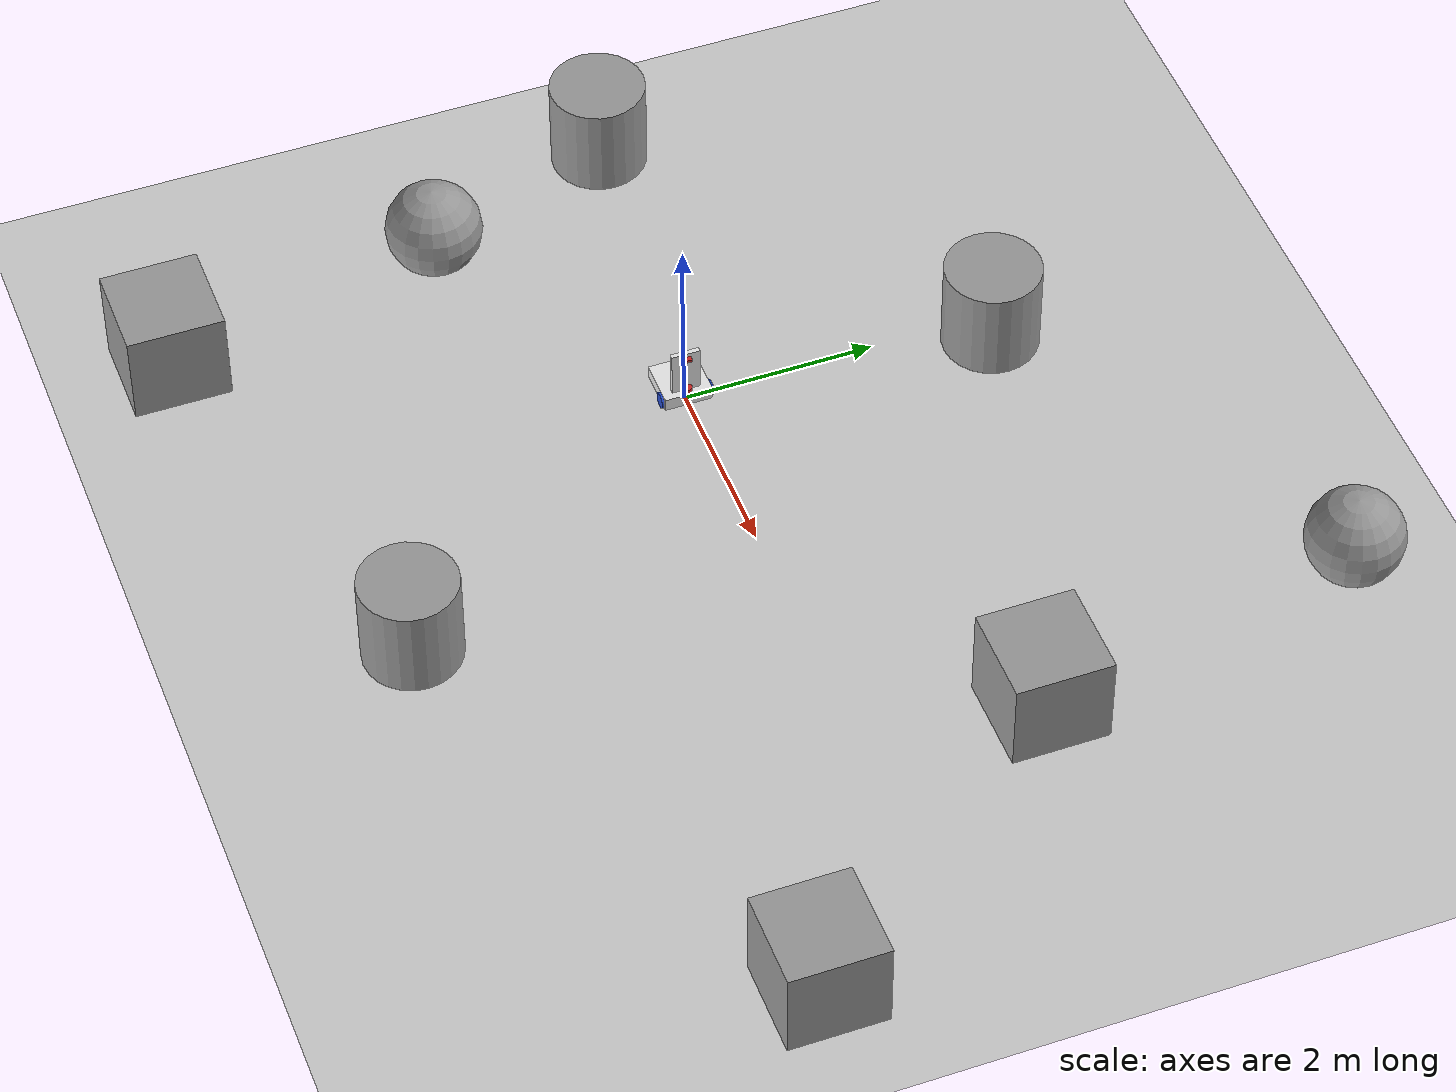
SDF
<sdf version="1.7">
 <world name="default">
  <light name="sun" type="directional">
   <pose>0 0 10 0 -0 0</pose>
   <diffuse>0.8 0.8 0.8 1</diffuse>
   <specular>0.2 0.2 0.2 1</specular>
   <attenuation>
    <range>1000</range>
    <constant>0.9</constant>
    <linear>0.01</linear>
    <quadratic>0.001</quadratic>
   </attenuation>
   <direction>-0.5 0.1 -0.9</direction>
   <spot><inner_angle>0</inner_angle><outer_angle>0</outer_angle><falloff>0</falloff></spot>
  </light>
  <model name="ground_plane">
   <static>1</static>
   <link name="link">
    <collision name="collision">
     <geometry><plane><normal>0 0 1</normal><size>100 100</size></plane></geometry>
     <surface><friction><ode><mu>100</mu><mu2>50</mu2></ode></friction></surface>
    </collision>
    <visual name="visual">
     <cast_shadows>0</cast_shadows>
     <geometry><plane><normal>0 0 1</normal><size>100 100</size></plane></geometry>
     <material>
      <script><uri>file://media/materials/scripts/gazebo.material</uri><name>Gazebo/Grey</name></script>
     </material>
    </visual>
   </link>
  </model>
  <gravity>0 0 -9.8</gravity>
  <magnetic_field>6e-06 2.3e-05 -4.2e-05</magnetic_field>
  <atmosphere type="adiabatic"/>
  <physics type="ode">
   <max_step_size>0.001</max_step_size>
   <real_time_factor>1</real_time_factor>
   <real_time_update_rate>1000</real_time_update_rate>
  </physics>
  <scene><ambient>0.4 0.4 0.4 1</ambient><background>0.7 0.7 0.7 1</background><shadows>1</shadows></scene>
  <spherical_coordinates>
   <surface_model>EARTH_WGS84</surface_model>
   <latitude_deg>0</latitude_deg>
   <longitude_deg>0</longitude_deg>
   <elevation>0</elevation>
   <heading_deg>0</heading_deg>
  </spherical_coordinates>
  <model name="my_bot">
   <link name="base_link">
    <inertial>
     <pose>-0.049858 0 -0.020295 0 -0 0</pose>
     <mass>3.51</mass>
     <inertia>
      <ixx>0.120113</ixx>
      <ixy>-4.15938e-18</ixy>
      <ixz>-0.0424734</ixz>
      <iyy>0.460065</iyy>
      <iyz>4.45012e-19</iyz>
      <izz>0.563322</izz>
     </inertia>
    </inertial>
    <collision name="base_link_fixed_joint_lump__chassis_collision">
     <pose>0.35 0 0.019 0 -0 0</pose>
     <geometry><box><size>0.5 0.5 0.138</size></box></geometry>
    </collision>
    <collision name="base_link_fixed_joint_lump__laser_frame_collision_1">
     <pose>0.05 0 0.125 0 -0 0</pose>
     <geometry><cylinder><length>0.04</length><radius>0.05</radius></cylinder></geometry>
    </collision>
    <collision name="base_link_fixed_joint_lump__left_caster_wheel_collision_2">
     <pose>-0.35 0.2 -0.0515 -1.5708 0 0</pose>
     <geometry><sphere><radius>0.03</radius></sphere></geometry>
     <surface><friction><ode><mu>0.001</mu><mu2>0.001</mu2></ode></friction></surface>
    </collision>
    <collision name="base_link_fixed_joint_lump__right_caster_wheel_collision_3">
     <pose>-0.35 -0.2 -0.0515 1.5708 -0 0</pose>
     <geometry><sphere><radius>0.03</radius></sphere></geometry>
     <surface><friction><ode><mu>0.001</mu><mu2>0.001</mu2></ode></friction></surface>
    </collision>
    <collision name="base_link_fixed_joint_lump__chassis_upper_collision_4">
     <pose>0 0 0.3265 0 -0 0</pose>
     <geometry><box><size>0.05 0.3 0.515</size></box></geometry>
    </collision>
    <visual name="base_link_fixed_joint_lump__chassis_visual">
     <pose>-0.15 0 0.019 0 -0 0</pose>
     <geometry><box><size>0.5 0.5 0.138</size></box></geometry>
     <material>
      <script><name>Gazebo/White</name><uri>file://media/materials/scripts/gazebo.material</uri></script>
     </material>
    </visual>
    <visual name="base_link_fixed_joint_lump__laser_frame_visual_1">
     <pose>0.05 0 0.125 0 -0 0</pose>
     <geometry><cylinder><length>0.04</length><radius>0.05</radius></cylinder></geometry>
     <material>
      <script><name>Gazebo/Red</name><uri>file://media/materials/scripts/gazebo.material</uri></script>
     </material>
    </visual>
    <visual name="base_link_fixed_joint_lump__left_caster_wheel_visual_2">
     <pose>-0.35 0.2 -0.0515 -1.5708 0 0</pose>
     <geometry><sphere><radius>0.03</radius></sphere></geometry>
     <material>
      <script><name>Gazebo/Orange</name><uri>file://media/materials/scripts/gazebo.material</uri></script>
     </material>
    </visual>
    <visual name="base_link_fixed_joint_lump__right_caster_wheel_visual_3">
     <pose>-0.35 -0.2 -0.0515 1.5708 -0 0</pose>
     <geometry><sphere><radius>0.03</radius></sphere></geometry>
     <material>
      <script><name>Gazebo/Orange</name><uri>file://media/materials/scripts/gazebo.material</uri></script>
     </material>
    </visual>
    <visual name="base_link_fixed_joint_lump__chassis_upper_visual_4">
     <pose>0 0 0.3265 0 -0 0</pose>
     <geometry><box><size>0.05 0.3 0.515</size></box></geometry>
     <material>
      <script><name>Gazebo/White</name><uri>file://media/materials/scripts/gazebo.material</uri></script>
     </material>
    </visual>
    <visual name="base_link_fixed_joint_lump__camera_link_visual_5">
     <pose>0.05 0 0.5265 0 -0 0</pose>
     <geometry><box><size>0.05 0.1 0.03</size></box></geometry>
     <material>
      <script><name>Gazebo/Red</name><uri>file://media/materials/scripts/gazebo.material</uri></script>
     </material>
    </visual>
    <sensor name="laser" type="ray">
     <visualize>1</visualize>
     <update_rate>10</update_rate>
     <ray>
      <scan>
       <horizontal>
        <samples>360</samples>
        <min_angle>-3.14</min_angle>
        <max_angle>3.14</max_angle>
        <resolution>1</resolution>
       </horizontal>
       <vertical><samples>1</samples><min_angle>0</min_angle><max_angle>0</max_angle></vertical>
      </scan>
      <range><min>0.3</min><max>12</max></range>
     </ray>
     <plugin name="laser_controller" filename="libgazebo_ros_ray_sensor.so">
      <ros><argument>~/out:=scan</argument></ros>
      <output_type>sensor_msgs/LaserScan</output_type>
      <frame_name>laser_frame</frame_name>
     </plugin>
     <pose>0.05 0 0.125 0 -0 0</pose>
    </sensor>
    <sensor name="camera" type="camera">
     <visualize>1</visualize>
     <update_rate>10</update_rate>
     <camera>
      <horizontal_fov>1.089</horizontal_fov>
      <image><format>R8G8B8</format><width>640</width><height>480</height></image>
      <clip><near>0.05</near><far>8</far></clip>
     </camera>
     <plugin name="camera_controller" filename="libgazebo_ros_camera.so">
      <frame_name>camera_link_optical</frame_name>
     </plugin>
     <pose>0.05 0 0.5265 0 -0 0</pose>
    </sensor>
   </link>
   <joint name="left_wheel_joint" type="revolute">
    <pose relative_to="base_link">0 0.25 0 -1.5708 0 0</pose>
    <parent>base_link</parent>
    <child>left_wheel</child>
    <axis>
     <xyz>0 0 1</xyz>
     <limit><lower>-1e+16</lower><upper>1e+16</upper></limit>
     <dynamics><spring_reference>0</spring_reference><spring_stiffness>0</spring_stiffness></dynamics>
    </axis>
   </joint>
   <link name="left_wheel">
    <pose relative_to="left_wheel_joint">0 0 0 0 -0 0</pose>
    <inertial>
     <mass>2</mass>
     <inertia>
      <ixx>0.00373779</ixx>
      <ixy>0</ixy>
      <ixz>0</ixz>
      <iyy>0.00373779</iyy>
      <iyz>0</iyz>
      <izz>0.00664225</izz>
     </inertia>
    </inertial>
    <collision name="left_wheel_collision">
     <geometry><sphere><radius>0.0815</radius></sphere></geometry>
    </collision>
    <visual name="left_wheel_visual">
     <geometry><cylinder><length>0.05</length><radius>0.0815</radius></cylinder></geometry>
     <material>
      <script><name>Gazebo/Blue</name><uri>file://media/materials/scripts/gazebo.material</uri></script>
     </material>
    </visual>
   </link>
   <joint name="right_wheel_joint" type="revolute">
    <pose relative_to="base_link">0 -0.25 0 1.5708 -0 0</pose>
    <parent>base_link</parent>
    <child>right_wheel</child>
    <axis>
     <xyz>0 0 -1</xyz>
     <limit><lower>-1e+16</lower><upper>1e+16</upper></limit>
     <dynamics><spring_reference>0</spring_reference><spring_stiffness>0</spring_stiffness></dynamics>
    </axis>
   </joint>
   <link name="right_wheel">
    <pose relative_to="right_wheel_joint">0 0 0 0 -0 0</pose>
    <inertial>
     <mass>2</mass>
     <inertia>
      <ixx>0.00373779</ixx>
      <ixy>0</ixy>
      <ixz>0</ixz>
      <iyy>0.00373779</iyy>
      <iyz>0</iyz>
      <izz>0.00664225</izz>
     </inertia>
    </inertial>
    <collision name="right_wheel_collision">
     <geometry><sphere><radius>0.0815</radius></sphere></geometry>
    </collision>
    <visual name="right_wheel_visual">
     <geometry><cylinder><length>0.05</length><radius>0.0815</radius></cylinder></geometry>
     <material>
      <script><name>Gazebo/Blue</name><uri>file://media/materials/scripts/gazebo.material</uri></script>
     </material>
    </visual>
   </link>
   <static>0</static>
   <plugin name="gazebo_ros2_control" filename="libgazebo_ros2_control.so">
    <parameters>/home/alfretz/robot_description/install/simulation/share/simulation/config/my_controllers.yaml</parameters>
    <parameters>/home/alfretz/robot_description/install/simulation/share/simulation/config/gazebo_params.yaml</parameters>
   </plugin>
   <pose>0.022453 0.001151 0.081499 5e-06 1e-06 0.00134</pose>
  </model>
  <model name="unit_box">
   <pose>5.00394 1.74283 0.499995 -1e-05 -0 -0</pose>
   <link name="link">
    <inertial>
     <mass>1</mass>
     <inertia>
      <ixx>0.166667</ixx>
      <ixy>0</ixy>
      <ixz>0</ixz>
      <iyy>0.166667</iyy>
      <iyz>0</iyz>
      <izz>0.166667</izz>
     </inertia>
    </inertial>
    <collision name="collision"><geometry><box><size>1 1 1</size></box></geometry></collision>
    <visual name="visual">
     <geometry><box><size>1 1 1</size></box></geometry>
     <material>
      <script><name>Gazebo/Grey</name><uri>file://media/materials/scripts/gazebo.material</uri></script>
     </material>
    </visual>
   </link>
  </model>
  <model name="unit_box_0">
   <pose>7.34835 -1.40441 0.499995 0 1e-05 0</pose>
   <link name="link">
    <inertial>
     <mass>1</mass>
     <inertia>
      <ixx>0.166667</ixx>
      <ixy>0</ixy>
      <ixz>0</ixz>
      <iyy>0.166667</iyy>
      <iyz>0</iyz>
      <izz>0.166667</izz>
     </inertia>
    </inertial>
    <collision name="collision"><geometry><box><size>1 1 1</size></box></geometry></collision>
    <visual name="visual">
     <geometry><box><size>1 1 1</size></box></geometry>
     <material>
      <script><name>Gazebo/Grey</name><uri>file://media/materials/scripts/gazebo.material</uri></script>
     </material>
    </visual>
   </link>
  </model>
  <model name="unit_cylinder">
   <pose>2.21449 -3.56769 0.499992 -3e-06 4e-06 0</pose>
   <link name="link">
    <inertial>
     <mass>1</mass>
     <inertia><ixx>0.145833</ixx><ixy>0</ixy><ixz>0</ixz><iyy>0.145833</iyy><iyz>0</iyz><izz>0.125</izz></inertia>
    </inertial>
    <collision name="collision">
     <geometry><cylinder><radius>0.5</radius><length>1</length></cylinder></geometry>
    </collision>
    <visual name="visual">
     <geometry><cylinder><radius>0.5</radius><length>1</length></cylinder></geometry>
     <material>
      <script><name>Gazebo/Grey</name><uri>file://media/materials/scripts/gazebo.material</uri></script>
     </material>
    </visual>
   </link>
  </model>
  <model name="unit_cylinder_0">
   <pose>0.298035 3.16798 0.499998 3e-06 4e-06 -0</pose>
   <link name="link">
    <inertial>
     <mass>1</mass>
     <inertia><ixx>0.145833</ixx><ixy>0</ixy><ixz>0</ixz><iyy>0.145833</iyy><iyz>0</iyz><izz>0.125</izz></inertia>
    </inertial>
    <collision name="collision">
     <geometry><cylinder><radius>0.5</radius><length>1</length></cylinder></geometry>
    </collision>
    <visual name="visual">
     <geometry><cylinder><radius>0.5</radius><length>1</length></cylinder></geometry>
     <material>
      <script><name>Gazebo/Grey</name><uri>file://media/materials/scripts/gazebo.material</uri></script>
     </material>
    </visual>
   </link>
  </model>
  <model name="unit_cylinder_1">
   <pose>-3.58957 0.360272 0.499997 3e-06 3e-06 0</pose>
   <link name="link">
    <inertial>
     <mass>1</mass>
     <inertia><ixx>0.145833</ixx><ixy>0</ixy><ixz>0</ixz><iyy>0.145833</iyy><iyz>0</iyz><izz>0.125</izz></inertia>
    </inertial>
    <collision name="collision">
     <geometry><cylinder><radius>0.5</radius><length>1</length></cylinder></geometry>
    </collision>
    <visual name="visual">
     <geometry><cylinder><radius>0.5</radius><length>1</length></cylinder></geometry>
     <material>
      <script><name>Gazebo/Grey</name><uri>file://media/materials/scripts/gazebo.material</uri></script>
     </material>
    </visual>
   </link>
  </model>
  <model name="unit_sphere">
   <pose>4.42931 5.23062 0.5 0 -0 0</pose>
   <link name="link">
    <inertial>
     <mass>1</mass>
     <inertia><ixx>0.1</ixx><ixy>0</ixy><ixz>0</ixz><iyy>0.1</iyy><iyz>0</iyz><izz>0.1</izz></inertia>
    </inertial>
    <collision name="collision"><geometry><sphere><radius>0.5</radius></sphere></geometry></collision>
    <visual name="visual">
     <geometry><sphere><radius>0.5</radius></sphere></geometry>
     <material>
      <script><name>Gazebo/Grey</name><uri>file://media/materials/scripts/gazebo.material</uri></script>
     </material>
    </visual>
   </link>
  </model>
  <model name="unit_sphere_0">
   <pose>-2.68893 -1.72663 0.5 0 -0 0</pose>
   <link name="link">
    <inertial>
     <mass>1</mass>
     <inertia><ixx>0.1</ixx><ixy>0</ixy><ixz>0</ixz><iyy>0.1</iyy><iyz>0</iyz><izz>0.1</izz></inertia>
    </inertial>
    <collision name="collision"><geometry><sphere><radius>0.5</radius></sphere></geometry></collision>
    <visual name="visual">
     <geometry><sphere><radius>0.5</radius></sphere></geometry>
     <material>
      <script><name>Gazebo/Grey</name><uri>file://media/materials/scripts/gazebo.material</uri></script>
     </material>
    </visual>
   </link>
  </model>
  <model name="unit_box_1">
   <pose>-2.1758 -4.69658 0.5 0 -0 0</pose>
   <link name="link">
    <inertial>
     <mass>1</mass>
     <inertia>
      <ixx>0.166667</ixx>
      <ixy>0</ixy>
      <ixz>0</ixz>
      <iyy>0.166667</iyy>
      <iyz>0</iyz>
      <izz>0.166667</izz>
     </inertia>
    </inertial>
    <collision name="collision"><geometry><box><size>1 1 1</size></box></geometry></collision>
    <visual name="visual">
     <geometry><box><size>1 1 1</size></box></geometry>
     <material>
      <script><name>Gazebo/Grey</name><uri>file://media/materials/scripts/gazebo.material</uri></script>
     </material>
    </visual>
   </link>
  </model>
 </world>
</sdf>
